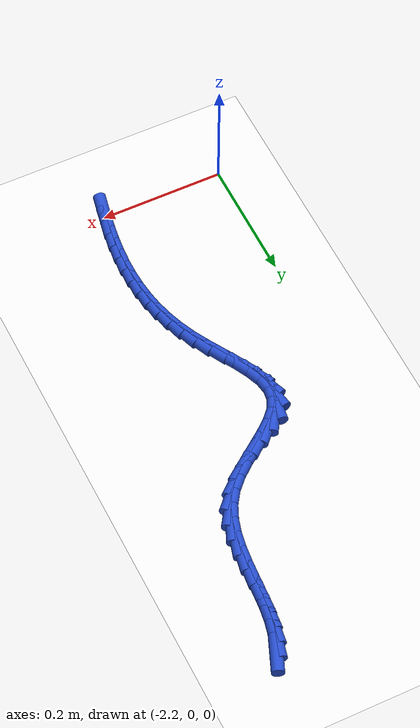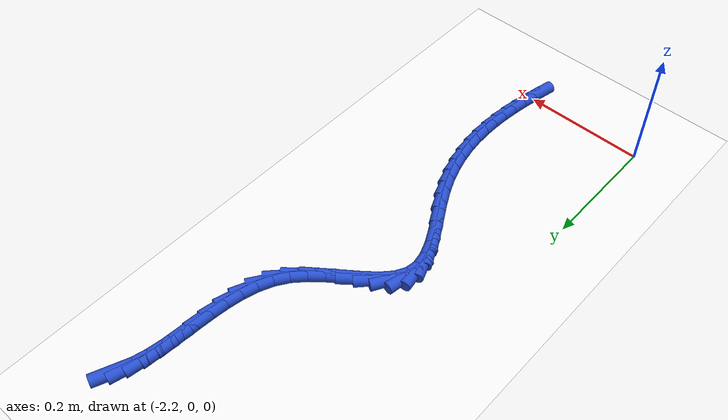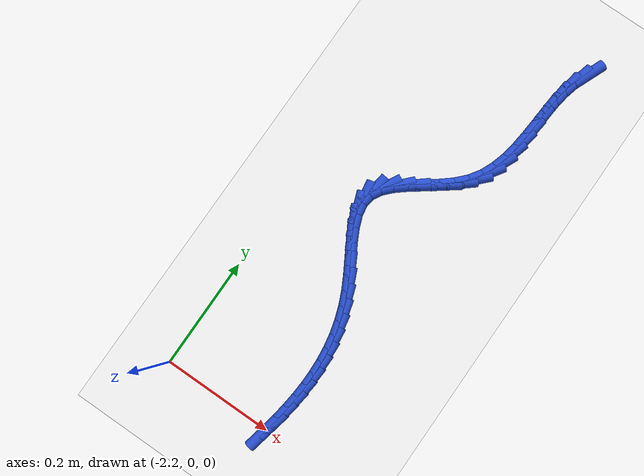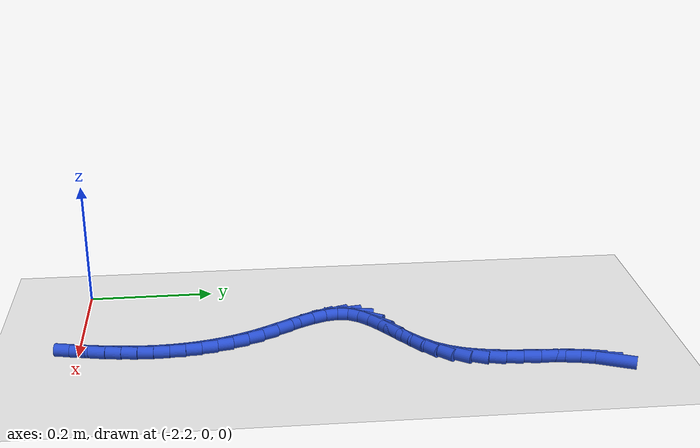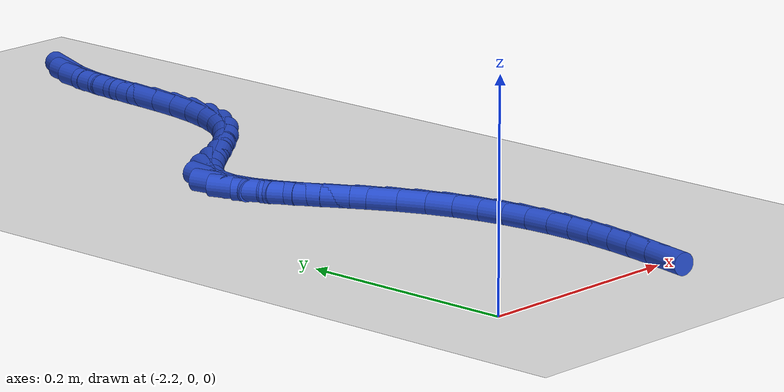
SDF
<sdf version="1.6">
 <world name="default">
  <model name="ground_plane">
   <static>1</static>
   <link name="link">
    <collision name="collision">
     <geometry><plane><normal>0 0 1</normal><size>100 100</size></plane></geometry>
     <surface><friction><ode><mu>100</mu><mu2>50</mu2></ode></friction></surface>
    </collision>
    <visual name="visual">
     <cast_shadows>0</cast_shadows>
     <geometry><plane><normal>0 0 1</normal><size>100 100</size></plane></geometry>
     <material>
      <script><uri>file://media/materials/scripts/gazebo.material</uri><name>Gazebo/WhiteGlow</name></script>
     </material>
    </visual>
   </link>
  </model>
  <model name="line">
   <link name="link_109">
    <pose>-1.8982809953575845 0.7980472652917749 0.01 0 1.57 1.1792841206414244</pose>
    <collision name="collision">
     <geometry><cylinder><radius>0.01</radius><length>0.08</length></cylinder></geometry>
    </collision>
    <visual name="visual">
     <material>
      <script><name>Gazebo/Blue</name><uri>file://media/materials/scripts/gazebo.material</uri></script>
     </material>
     <geometry><cylinder><radius>0.01</radius><length>0.08</length></cylinder></geometry>
    </visual>
   </link>
   <link name="link_110">
    <pose>-1.9065018775655915 0.7781334823983412 0.01 0 1.57 1.3245093801833983</pose>
    <collision name="collision">
     <geometry><cylinder><radius>0.01</radius><length>0.08</length></cylinder></geometry>
    </collision>
    <visual name="visual">
     <material>
      <script><name>Gazebo/Blue</name><uri>file://media/materials/scripts/gazebo.material</uri></script>
     </material>
     <geometry><cylinder><radius>0.01</radius><length>0.08</length></cylinder></geometry>
    </visual>
   </link>
   <link name="link_111">
    <pose>-1.912013562575862 0.756208688655536 0.01 0 1.57 1.4217186992973103</pose>
    <collision name="collision">
     <geometry><cylinder><radius>0.01</radius><length>0.08</length></cylinder></geometry>
    </collision>
    <visual name="visual">
     <material>
      <script><name>Gazebo/Blue</name><uri>file://media/materials/scripts/gazebo.material</uri></script>
     </material>
     <geometry><cylinder><radius>0.01</radius><length>0.08</length></cylinder></geometry>
    </visual>
   </link>
   <link name="link_112">
    <pose>-1.9155441796650219 0.7327013164272378 0.01 0 1.57 1.4787000002623276</pose>
    <collision name="collision">
     <geometry><cylinder><radius>0.01</radius><length>0.08</length></cylinder></geometry>
    </collision>
    <visual name="visual">
     <material>
      <script><name>Gazebo/Blue</name><uri>file://media/materials/scripts/gazebo.material</uri></script>
     </material>
     <geometry><cylinder><radius>0.01</radius><length>0.08</length></cylinder></geometry>
    </visual>
   </link>
   <link name="link_113">
    <pose>-1.9178218581096966 0.708039798077324 0.01 0 1.57 1.5018604320649225</pose>
    <collision name="collision">
     <geometry><cylinder><radius>0.01</radius><length>0.08</length></cylinder></geometry>
    </collision>
    <visual name="visual">
     <material>
      <script><name>Gazebo/Blue</name><uri>file://media/materials/scripts/gazebo.material</uri></script>
     </material>
     <geometry><cylinder><radius>0.01</radius><length>0.08</length></cylinder></geometry>
    </visual>
   </link>
   <link name="link_114">
    <pose>-1.9195747271865125 0.6826525659696724 0.01 0 1.57 1.4947808832272027</pose>
    <collision name="collision">
     <geometry><cylinder><radius>0.01</radius><length>0.08</length></cylinder></geometry>
    </collision>
    <visual name="visual">
     <material>
      <script><name>Gazebo/Blue</name><uri>file://media/materials/scripts/gazebo.material</uri></script>
     </material>
     <geometry><cylinder><radius>0.01</radius><length>0.08</length></cylinder></geometry>
    </visual>
   </link>
   <link name="link_115">
    <pose>-1.9215309161720944 0.6569680524681605 0.01 0 1.57 1.4582694597909476</pose>
    <collision name="collision">
     <geometry><cylinder><radius>0.01</radius><length>0.08</length></cylinder></geometry>
    </collision>
    <visual name="visual">
     <material>
      <script><name>Gazebo/Blue</name><uri>file://media/materials/scripts/gazebo.material</uri></script>
     </material>
     <geometry><cylinder><radius>0.01</radius><length>0.08</length></cylinder></geometry>
    </visual>
   </link>
   <link name="link_116">
    <pose>-1.9244185543430687 0.6314146899366664 0.01 0 1.57 1.3908307789255325</pose>
    <collision name="collision">
     <geometry><cylinder><radius>0.01</radius><length>0.08</length></cylinder></geometry>
    </collision>
    <visual name="visual">
     <material>
      <script><name>Gazebo/Blue</name><uri>file://media/materials/scripts/gazebo.material</uri></script>
     </material>
     <geometry><cylinder><radius>0.01</radius><length>0.08</length></cylinder></geometry>
    </visual>
   </link>
   <link name="link_117">
    <pose>-1.9289657709760608 0.6064209107390681 0.01 0 1.57 1.2895669689778035</pose>
    <collision name="collision">
     <geometry><cylinder><radius>0.01</radius><length>0.08</length></cylinder></geometry>
    </collision>
    <visual name="visual">
     <material>
      <script><name>Gazebo/Blue</name><uri>file://media/materials/scripts/gazebo.material</uri></script>
     </material>
     <geometry><cylinder><radius>0.01</radius><length>0.08</length></cylinder></geometry>
    </visual>
   </link>
   <link name="link_118">
    <pose>-1.9359006953476974 0.5824151472392427 0.01 0 1.57 1.152163011966202</pose>
    <collision name="collision">
     <geometry><cylinder><radius>0.01</radius><length>0.08</length></cylinder></geometry>
    </collision>
    <visual name="visual">
     <material>
      <script><name>Gazebo/Blue</name><uri>file://media/materials/scripts/gazebo.material</uri></script>
     </material>
     <geometry><cylinder><radius>0.01</radius><length>0.08</length></cylinder></geometry>
    </visual>
   </link>
   <link name="link_119">
    <pose>-1.945951456734603 0.5598258318010683 0.01 0 1.57 0.9806747746683436</pose>
    <collision name="collision">
     <geometry><cylinder><radius>0.01</radius><length>0.08</length></cylinder></geometry>
    </collision>
    <visual name="visual">
     <material>
      <script><name>Gazebo/Blue</name><uri>file://media/materials/scripts/gazebo.material</uri></script>
     </material>
     <geometry><cylinder><radius>0.01</radius><length>0.08</length></cylinder></geometry>
    </visual>
   </link>
   <link name="link_120">
    <pose>-1.9598449928554504 0.539080903605344 0.01 0 1.57 0.808042278652194</pose>
    <collision name="collision">
     <geometry><cylinder><radius>0.01</radius><length>0.08</length></cylinder></geometry>
    </collision>
    <visual name="visual">
     <material>
      <script><name>Gazebo/Blue</name><uri>file://media/materials/scripts/gazebo.material</uri></script>
     </material>
     <geometry><cylinder><radius>0.01</radius><length>0.08</length></cylinder></geometry>
    </visual>
   </link>
   <link name="link_121">
    <pose>-1.977728654948474 0.5203684123303658 0.01 0 1.57 0.6954585768939253</pose>
    <collision name="collision">
     <geometry><cylinder><radius>0.01</radius><length>0.08</length></cylinder></geometry>
    </collision>
    <visual name="visual">
     <material>
      <script><name>Gazebo/Blue</name><uri>file://media/materials/scripts/gazebo.material</uri></script>
     </material>
     <geometry><cylinder><radius>0.01</radius><length>0.08</length></cylinder></geometry>
    </visual>
   </link>
   <link name="link_122">
    <pose>-1.9982392535931397 0.5032511983726847 0.01 0 1.57 0.6408544481785318</pose>
    <collision name="collision">
     <geometry><cylinder><radius>0.01</radius><length>0.08</length></cylinder></geometry>
    </collision>
    <visual name="visual">
     <material>
      <script><name>Gazebo/Blue</name><uri>file://media/materials/scripts/gazebo.material</uri></script>
     </material>
     <geometry><cylinder><radius>0.01</radius><length>0.08</length></cylinder></geometry>
    </visual>
   </link>
   <link name="link_123">
    <pose>-2.019770624152703 0.48719153524935366 0.01 0 1.57 0.638297470263451</pose>
    <collision name="collision">
     <geometry><cylinder><radius>0.01</radius><length>0.08</length></cylinder></geometry>
    </collision>
    <visual name="visual">
     <material>
      <script><name>Gazebo/Blue</name><uri>file://media/materials/scripts/gazebo.material</uri></script>
     </material>
     <geometry><cylinder><radius>0.01</radius><length>0.08</length></cylinder></geometry>
    </visual>
   </link>
   <link name="link_124">
    <pose>-2.040716601990424 0.47165169647742694 0.01 0 1.57 0.6925016907645603</pose>
    <collision name="collision">
     <geometry><cylinder><radius>0.01</radius><length>0.08</length></cylinder></geometry>
    </collision>
    <visual name="visual">
     <material>
      <script><name>Gazebo/Blue</name><uri>file://media/materials/scripts/gazebo.material</uri></script>
     </material>
     <geometry><cylinder><radius>0.01</radius><length>0.08</length></cylinder></geometry>
    </visual>
   </link>
   <link name="link_125">
    <pose>-2.0594710224695594 0.45609395557395693 0.01 0 1.57 0.8226088038863579</pose>
    <collision name="collision">
     <geometry><cylinder><radius>0.01</radius><length>0.08</length></cylinder></geometry>
    </collision>
    <visual name="visual">
     <material>
      <script><name>Gazebo/Blue</name><uri>file://media/materials/scripts/gazebo.material</uri></script>
     </material>
     <geometry><cylinder><radius>0.01</radius><length>0.08</length></cylinder></geometry>
    </visual>
   </link>
   <link name="link_126">
    <pose>-2.0744277209533677 0.4399805860559975 0.01 0 1.57 1.0639856276110267</pose>
    <collision name="collision">
     <geometry><cylinder><radius>0.01</radius><length>0.08</length></cylinder></geometry>
    </collision>
    <visual name="visual">
     <material>
      <script><name>Gazebo/Blue</name><uri>file://media/materials/scripts/gazebo.material</uri></script>
     </material>
     <geometry><cylinder><radius>0.01</radius><length>0.08</length></cylinder></geometry>
    </visual>
   </link>
   <link name="link_127">
    <pose>-2.0839805328051066 0.422773861440602 0.01 0 1.57 1.4245084544590072</pose>
    <collision name="collision">
     <geometry><cylinder><radius>0.01</radius><length>0.08</length></cylinder></geometry>
    </collision>
    <visual name="visual">
     <material>
      <script><name>Gazebo/Blue</name><uri>file://media/materials/scripts/gazebo.material</uri></script>
     </material>
     <geometry><cylinder><radius>0.01</radius><length>0.08</length></cylinder></geometry>
    </visual>
   </link>
   <link name="link_128">
    <pose>-2.086747429686131 0.4039949203532213 0.01 0 1.57 -1.399856769906198</pose>
    <collision name="collision">
     <geometry><cylinder><radius>0.01</radius><length>0.08</length></cylinder></geometry>
    </collision>
    <visual name="visual">
     <material>
      <script><name>Gazebo/Blue</name><uri>file://media/materials/scripts/gazebo.material</uri></script>
     </material>
     <geometry><cylinder><radius>0.01</radius><length>0.08</length></cylinder></geometry>
    </visual>
   </link>
   <link name="link_129">
    <pose>-2.0832373956919152 0.38366153963837507 0.01 0 1.57 -1.2030832977103258</pose>
    <collision name="collision">
     <geometry><cylinder><radius>0.01</radius><length>0.08</length></cylinder></geometry>
    </collision>
    <visual name="visual">
     <material>
      <script><name>Gazebo/Blue</name><uri>file://media/materials/scripts/gazebo.material</uri></script>
     </material>
     <geometry><cylinder><radius>0.01</radius><length>0.08</length></cylinder></geometry>
    </visual>
   </link>
   <link name="link_130">
    <pose>-2.0749083044404304 0.36204070381052855 0.01 0 1.57 -1.0943891049047423</pose>
    <collision name="collision">
     <geometry><cylinder><radius>0.01</radius><length>0.08</length></cylinder></geometry>
    </collision>
    <visual name="visual">
     <material>
      <script><name>Gazebo/Blue</name><uri>file://media/materials/scripts/gazebo.material</uri></script>
     </material>
     <geometry><cylinder><radius>0.01</radius><length>0.08</length></cylinder></geometry>
    </visual>
   </link>
   <link name="link_131">
    <pose>-2.0632251614336323 0.33940127043696067 0.01 0 1.57 -1.0450056074578633</pose>
    <collision name="collision">
     <geometry><cylinder><radius>0.01</radius><length>0.08</length></cylinder></geometry>
    </collision>
    <visual name="visual">
     <material>
      <script><name>Gazebo/Blue</name><uri>file://media/materials/scripts/gazebo.material</uri></script>
     </material>
     <geometry><cylinder><radius>0.01</radius><length>0.08</length></cylinder></geometry>
    </visual>
   </link>
   <link name="link_132">
    <pose>-2.0496529721734724 0.31601209708494993 0.01 0 1.57 -1.040473344985379</pose>
    <collision name="collision">
     <geometry><cylinder><radius>0.01</radius><length>0.08</length></cylinder></geometry>
    </collision>
    <visual name="visual">
     <material>
      <script><name>Gazebo/Blue</name><uri>file://media/materials/scripts/gazebo.material</uri></script>
     </material>
     <geometry><cylinder><radius>0.01</radius><length>0.08</length></cylinder></geometry>
    </visual>
   </link>
   <link name="link_133">
    <pose>-2.035656742161908 0.2921420413217757 0.01 0 1.57 -1.0772376958725265</pose>
    <collision name="collision">
     <geometry><cylinder><radius>0.01</radius><length>0.08</length></cylinder></geometry>
    </collision>
    <visual name="visual">
     <material>
      <script><name>Gazebo/Blue</name><uri>file://media/materials/scripts/gazebo.material</uri></script>
     </material>
     <geometry><cylinder><radius>0.01</radius><length>0.08</length></cylinder></geometry>
    </visual>
   </link>
   <link name="link_134">
    <pose>-2.0227013429775917 0.2680599382024431 0.01 0 1.57 -1.1496147558714622</pose>
    <collision name="collision">
     <geometry><cylinder><radius>0.01</radius><length>0.08</length></cylinder></geometry>
    </collision>
    <visual name="visual">
     <material>
      <script><name>Gazebo/Blue</name><uri>file://media/materials/scripts/gazebo.material</uri></script>
     </material>
     <geometry><cylinder><radius>0.01</radius><length>0.08</length></cylinder></geometry>
    </visual>
   </link>
   <link name="link_135">
    <pose>-2.0119127054139634 0.24397764742781644 0.01 0 1.57 -1.2286133698470763</pose>
    <collision name="collision">
     <geometry><cylinder><radius>0.01</radius><length>0.08</length></cylinder></geometry>
    </collision>
    <visual name="visual">
     <material>
      <script><name>Gazebo/Blue</name><uri>file://media/materials/scripts/gazebo.material</uri></script>
     </material>
     <geometry><cylinder><radius>0.01</radius><length>0.08</length></cylinder></geometry>
    </visual>
   </link>
   <link name="link_136">
    <pose>-2.0033460004707004 0.21992703584717027 0.01 0 1.57 -1.3065238655224471</pose>
    <collision name="collision">
     <geometry><cylinder><radius>0.01</radius><length>0.08</length></cylinder></geometry>
    </collision>
    <visual name="visual">
     <material>
      <script><name>Gazebo/Blue</name><uri>file://media/materials/scripts/gazebo.material</uri></script>
     </material>
     <geometry><cylinder><radius>0.01</radius><length>0.08</length></cylinder></geometry>
    </visual>
   </link>
   <link name="link_137">
    <pose>-1.9968454676758327 0.19590451309772042 0.01 0 1.57 -1.3818081515260658</pose>
    <collision name="collision">
     <geometry><cylinder><radius>0.01</radius><length>0.08</length></cylinder></geometry>
    </collision>
    <visual name="visual">
     <material>
      <script><name>Gazebo/Blue</name><uri>file://media/materials/scripts/gazebo.material</uri></script>
     </material>
     <geometry><cylinder><radius>0.01</radius><length>0.08</length></cylinder></geometry>
    </visual>
   </link>
   <link name="link_138">
    <pose>-1.992255346557392 0.1719064888166828 0.01 0 1.57 -1.4530856779395382</pose>
    <collision name="collision">
     <geometry><cylinder><radius>0.01</radius><length>0.08</length></cylinder></geometry>
    </collision>
    <visual name="visual">
     <material>
      <script><name>Gazebo/Blue</name><uri>file://media/materials/scripts/gazebo.material</uri></script>
     </material>
     <geometry><cylinder><radius>0.01</radius><length>0.08</length></cylinder></geometry>
    </visual>
   </link>
   <link name="link_139">
    <pose>-1.9894198766434072 0.14792937264127323 0.01 0 1.57 -1.5192314942548435</pose>
    <collision name="collision">
     <geometry><cylinder><radius>0.01</radius><length>0.08</length></cylinder></geometry>
    </collision>
    <visual name="visual">
     <material>
      <script><name>Gazebo/Blue</name><uri>file://media/materials/scripts/gazebo.material</uri></script>
     </material>
     <geometry><cylinder><radius>0.01</radius><length>0.08</length></cylinder></geometry>
    </visual>
   </link>
   <link name="link_140">
    <pose>-1.9881832974619111 0.12396957420870806 0.01 0 1.57 1.5621708635122808</pose>
    <collision name="collision">
     <geometry><cylinder><radius>0.01</radius><length>0.08</length></cylinder></geometry>
    </collision>
    <visual name="visual">
     <material>
      <script><name>Gazebo/Blue</name><uri>file://media/materials/scripts/gazebo.material</uri></script>
     </material>
     <geometry><cylinder><radius>0.01</radius><length>0.08</length></cylinder></geometry>
    </visual>
   </link>
   <link name="link_141">
    <pose>-1.9883898485409344 0.10002350315620243 0.01 0 1.57 1.5084638700955428</pose>
    <collision name="collision">
     <geometry><cylinder><radius>0.01</radius><length>0.08</length></cylinder></geometry>
    </collision>
    <visual name="visual">
     <material>
      <script><name>Gazebo/Blue</name><uri>file://media/materials/scripts/gazebo.material</uri></script>
     </material>
     <geometry><cylinder><radius>0.01</radius><length>0.08</length></cylinder></geometry>
    </visual>
   </link>
   <link name="link_142">
    <pose>-1.9898837694085079 0.07608756912097257 0.01 0 1.57 1.461513551750893</pose>
    <collision name="collision">
     <geometry><cylinder><radius>0.01</radius><length>0.08</length></cylinder></geometry>
    </collision>
    <visual name="visual">
     <material>
      <script><name>Gazebo/Blue</name><uri>file://media/materials/scripts/gazebo.material</uri></script>
     </material>
     <geometry><cylinder><radius>0.01</radius><length>0.08</length></cylinder></geometry>
    </visual>
   </link>
   <link name="link_143">
    <pose>-1.9925092995926617 0.052158181740234386 0.01 0 1.57 1.4213989795019975</pose>
    <collision name="collision">
     <geometry><cylinder><radius>0.01</radius><length>0.08</length></cylinder></geometry>
    </collision>
    <visual name="visual">
     <material>
      <script><name>Gazebo/Blue</name><uri>file://media/materials/scripts/gazebo.material</uri></script>
     </material>
     <geometry><cylinder><radius>0.01</radius><length>0.08</length></cylinder></geometry>
    </visual>
   </link>
   <link name="link_144">
    <pose>-1.996110678621428 0.028231750651203737 0.01 0 1.57 1.388068223751873</pose>
    <collision name="collision">
     <geometry><cylinder><radius>0.01</radius><length>0.08</length></cylinder></geometry>
    </collision>
    <visual name="visual">
     <material>
      <script><name>Gazebo/Blue</name><uri>file://media/materials/scripts/gazebo.material</uri></script>
     </material>
     <geometry><cylinder><radius>0.01</radius><length>0.08</length></cylinder></geometry>
    </visual>
   </link>
   <link name="link_145">
    <pose>-2.0005321460228362 0.00430468549109652 0.01 0 1.57 1.3613950909248103</pose>
    <collision name="collision">
     <geometry><cylinder><radius>0.01</radius><length>0.08</length></cylinder></geometry>
    </collision>
    <visual name="visual">
     <material>
      <script><name>Gazebo/Blue</name><uri>file://media/materials/scripts/gazebo.material</uri></script>
     </material>
     <geometry><cylinder><radius>0.01</radius><length>0.08</length></cylinder></geometry>
    </visual>
   </link>
  </model>
 </world>
</sdf>
